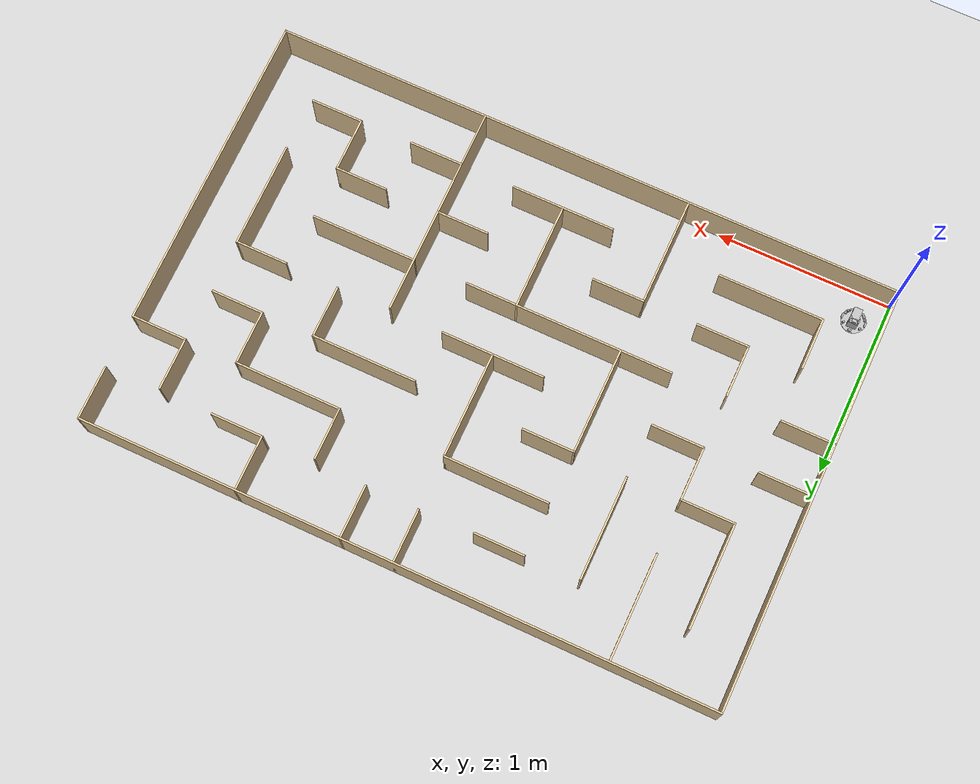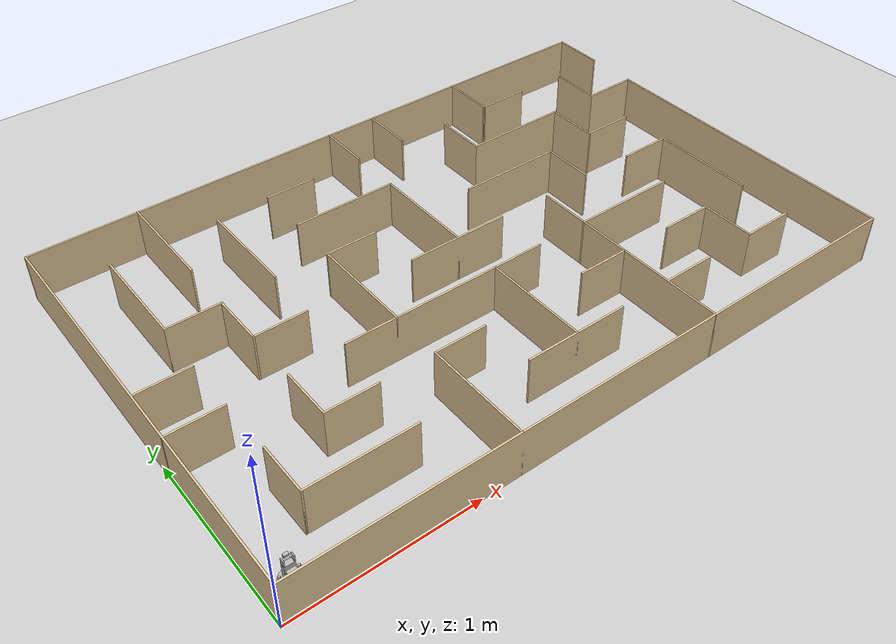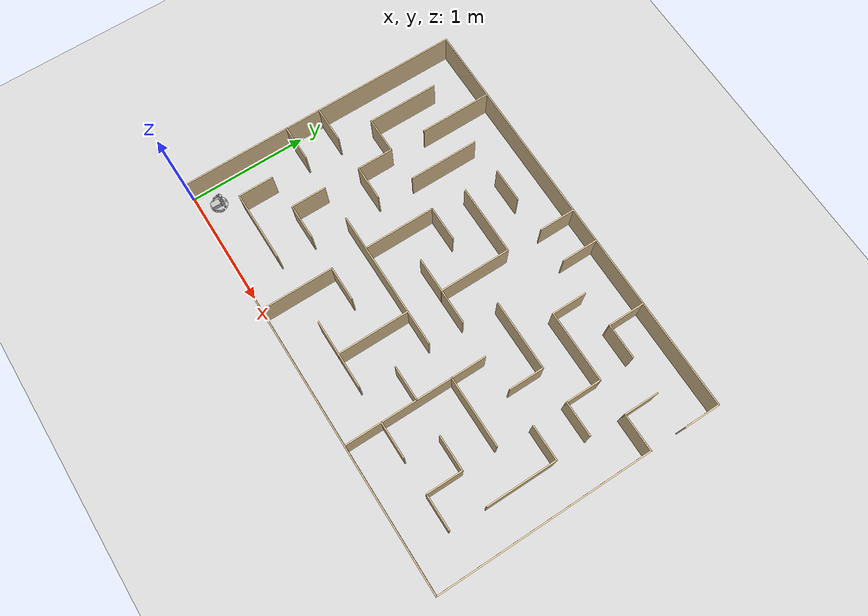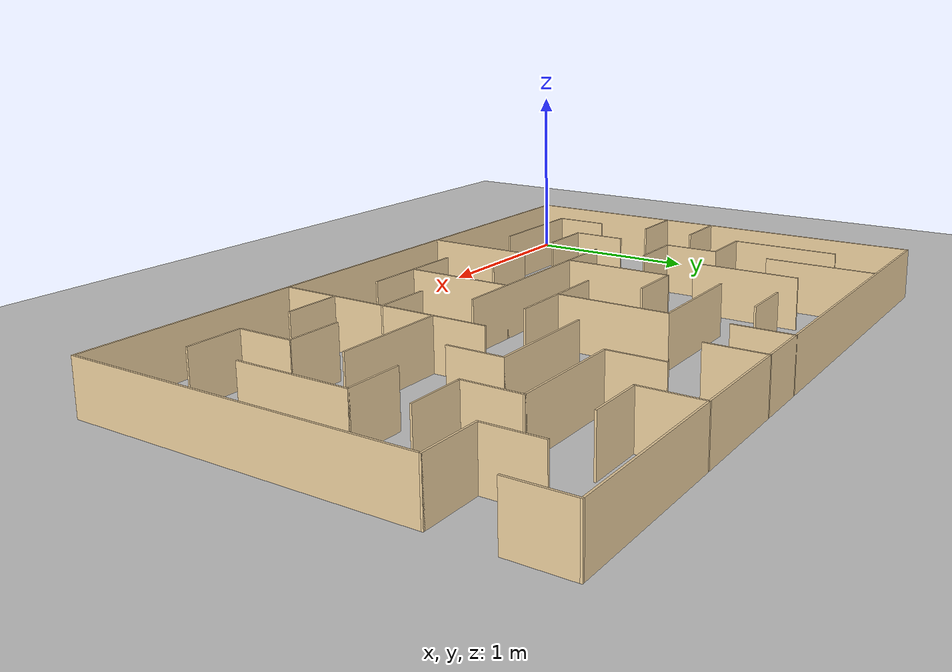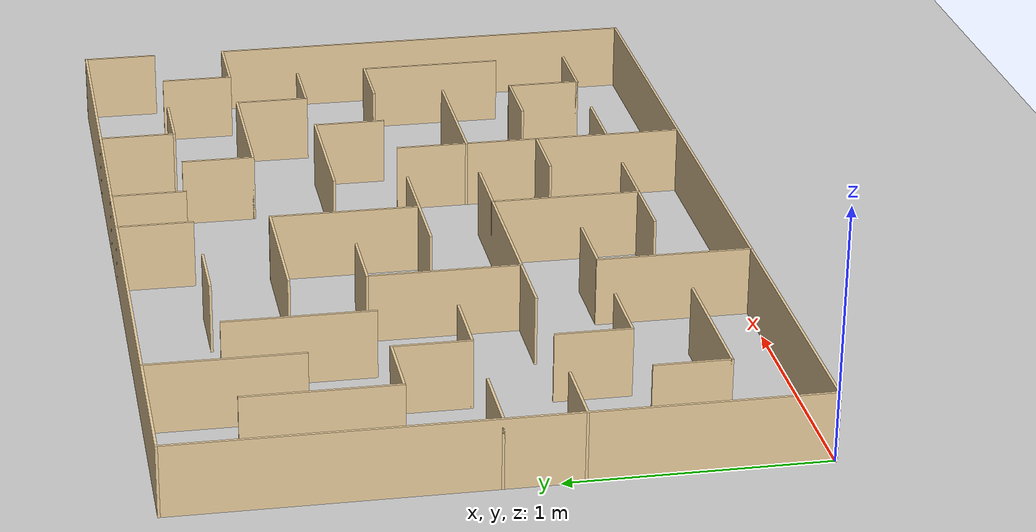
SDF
<?xml version="1.0" ?>
<sdf version="1.4">
  <world name="default">
    <scene>
      <ambient>0.5 0.5 0.5 1.0</ambient>
      <shadows>0</shadows>
    </scene>
    <include>
      <uri>model://ground_plane</uri>
    </include>
    <include>
      <uri>model://sun</uri>
    </include>
    <include>
      <uri>model://iti0201_robot</uri>
      <name>iti0201_robot</name>
      <pose>0.15 0.15 0 0 0 -4.712</pose> <!-- this is the robot's starting position, if you know where it should be, you can change this -->
    </include>

    <model name='mazeeeeee_tight'>
    <pose frame=''>1.80996 1.21 0 0 -0 0</pose>
    <link name='Wall_0'>
      <collision name='Wall_0_Collision'>
        <geometry>
          <box>
            <size>0.6 0.01 0.28</size>
          </box>
        </geometry>
        <pose frame=''>0 0 0.14 0 -0 0</pose>
      </collision>
      <visual name='Wall_0_Visual'>
        <pose frame=''>0 0 0.14 0 -0 0</pose>
        <geometry>
          <box>
            <size>0.6 0.01 0.28</size>
          </box>
        </geometry>
        <material>
          <script>
            <uri>file://media/materials/scripts/gazebo.material</uri>
            <name>Gazebo/Grey</name>
          </script>
          <ambient>0.921569 0.807843 0.615686 1</ambient>
        </material>
        <meta>
          <layer>0</layer>
        </meta>
      </visual>
      <pose frame=''>1.50004 -0.295 0 0 0 -1.5708</pose>
    </link>
    <link name='Wall_100'>
      <collision name='Wall_100_Collision'>
        <geometry>
          <box>
            <size>0.3 0.01 0.28</size>
          </box>
        </geometry>
        <pose frame=''>0 0 0.14 0 -0 0</pose>
      </collision>
      <visual name='Wall_100_Visual'>
        <pose frame=''>0 0 0.14 0 -0 0</pose>
        <geometry>
          <box>
            <size>0.3 0.01 0.28</size>
          </box>
        </geometry>
        <material>
          <script>
            <uri>file://media/materials/scripts/gazebo.material</uri>
            <name>Gazebo/Grey</name>
          </script>
          <ambient>0.921569 0.807843 0.615686 1</ambient>
        </material>
        <meta>
          <layer>0</layer>
        </meta>
      </visual>
      <pose frame=''>1.34504 -0.9 0 0 -0 0</pose>
    </link>
    <link name='Wall_11'>
      <collision name='Wall_11_Collision'>
        <geometry>
          <box>
            <size>0.32 0.01 0.28</size>
          </box>
        </geometry>
        <pose frame=''>0 0 0.14 0 -0 0</pose>
      </collision>
      <visual name='Wall_11_Visual'>
        <pose frame=''>0 0 0.14 0 -0 0</pose>
        <geometry>
          <box>
            <size>0.32 0.01 0.28</size>
          </box>
        </geometry>
        <material>
          <script>
            <uri>file://media/materials/scripts/gazebo.material</uri>
            <name>Gazebo/Grey</name>
          </script>
          <ambient>0.921569 0.807843 0.615686 1</ambient>
        </material>
        <meta>
          <layer>0</layer>
        </meta>
      </visual>
      <pose frame=''>0.900042 1.055 0 0 0 -1.5708</pose>
    </link>
    <link name='Wall_13'>
      <collision name='Wall_13_Collision'>
        <geometry>
          <box>
            <size>0.3 0.01 0.28</size>
          </box>
        </geometry>
        <pose frame=''>0 0 0.14 0 -0 0</pose>
      </collision>
      <visual name='Wall_13_Visual'>
        <pose frame=''>0 0 0.14 0 -0 0</pose>
        <geometry>
          <box>
            <size>0.3 0.01 0.28</size>
          </box>
        </geometry>
        <material>
          <script>
            <uri>file://media/materials/scripts/gazebo.material</uri>
            <name>Gazebo/Grey</name>
          </script>
          <ambient>0.921569 0.807843 0.615686 1</ambient>
        </material>
        <meta>
          <layer>0</layer>
        </meta>
      </visual>
      <pose frame=''>0.900042 0.155 0 0 0 -1.5708</pose>
    </link>
    <link name='Wall_15'>
      <collision name='Wall_15_Collision'>
        <geometry>
          <box>
            <size>0.6 0.01 0.28</size>
          </box>
        </geometry>
        <pose frame=''>0 0 0.14 0 -0 0</pose>
      </collision>
      <visual name='Wall_15_Visual'>
        <pose frame=''>0 0 0.14 0 -0 0</pose>
        <geometry>
          <box>
            <size>0.6 0.01 0.28</size>
          </box>
        </geometry>
        <material>
          <script>
            <uri>file://media/materials/scripts/gazebo.material</uri>
            <name>Gazebo/Grey</name>
          </script>
          <ambient>0.921569 0.807843 0.615686 1</ambient>
        </material>
        <meta>
          <layer>0</layer>
        </meta>
      </visual>
      <pose frame=''>0.605042 0.3 0 0 -0 0</pose>
    </link>
    <link name='Wall_18'>
      <collision name='Wall_18_Collision'>
        <geometry>
          <box>
            <size>0.3 0.01 0.28</size>
          </box>
        </geometry>
        <pose frame=''>0 0 0.14 0 -0 0</pose>
      </collision>
      <visual name='Wall_18_Visual'>
        <pose frame=''>0 0 0.14 0 -0 0</pose>
        <geometry>
          <box>
            <size>0.3 0.01 0.28</size>
          </box>
        </geometry>
        <material>
          <script>
            <uri>file://media/materials/scripts/gazebo.material</uri>
            <name>Gazebo/Grey</name>
          </script>
          <ambient>0.921569 0.807843 0.615686 1</ambient>
        </material>
        <meta>
          <layer>0</layer>
        </meta>
      </visual>
      <pose frame=''>-0.454958 -0.6 0 0 -0 0</pose>
    </link>
    <link name='Wall_2'>
      <collision name='Wall_2_Collision'>
        <geometry>
          <box>
            <size>0.3 0.01 0.28</size>
          </box>
        </geometry>
        <pose frame=''>0 0 0.14 0 -0 0</pose>
      </collision>
      <visual name='Wall_2_Visual'>
        <pose frame=''>0 0 0.14 0 -0 0</pose>
        <geometry>
          <box>
            <size>0.3 0.01 0.28</size>
          </box>
        </geometry>
        <material>
          <script>
            <uri>file://media/materials/scripts/gazebo.material</uri>
            <name>Gazebo/Grey</name>
          </script>
          <ambient>0.921569 0.807843 0.615686 1</ambient>
        </material>
        <meta>
          <layer>0</layer>
        </meta>
      </visual>
      <pose frame=''>1.35504 0 0 0 -0 0</pose>
    </link>
    <link name='Wall_20'>
      <collision name='Wall_20_Collision'>
        <geometry>
          <box>
            <size>0.62 0.01 0.28</size>
          </box>
        </geometry>
        <pose frame=''>0 0 0.14 0 -0 0</pose>
      </collision>
      <visual name='Wall_20_Visual'>
        <pose frame=''>0 0 0.14 0 -0 0</pose>
        <geometry>
          <box>
            <size>0.62 0.01 0.28</size>
          </box>
        </geometry>
        <material>
          <script>
            <uri>file://media/materials/scripts/gazebo.material</uri>
            <name>Gazebo/Grey</name>
          </script>
          <ambient>0.921569 0.807843 0.615686 1</ambient>
        </material>
        <meta>
          <layer>0</layer>
        </meta>
      </visual>
      <pose frame=''>-0.599958 -0.905 0 0 -0 1.5708</pose>
    </link>
    <link name='Wall_22'>
      <collision name='Wall_22_Collision'>
        <geometry>
          <box>
            <size>0.29 0.01 0.28</size>
          </box>
        </geometry>
        <pose frame=''>0 0 0.14 0 -0 0</pose>
      </collision>
      <visual name='Wall_22_Visual'>
        <pose frame=''>0 0 0.14 0 -0 0</pose>
        <geometry>
          <box>
            <size>0.29 0.01 0.28</size>
          </box>
        </geometry>
        <material>
          <script>
            <uri>file://media/materials/scripts/gazebo.material</uri>
            <name>Gazebo/Grey</name>
          </script>
          <ambient>0.921569 0.807843 0.615686 1</ambient>
        </material>
        <meta>
          <layer>0</layer>
        </meta>
      </visual>
      <pose frame=''>-0.449958 0.9 0 0 -0 0</pose>
    </link>
    <link name='Wall_24'>
      <collision name='Wall_24_Collision'>
        <geometry>
          <box>
            <size>0.59 0.01 0.28</size>
          </box>
        </geometry>
        <pose frame=''>0 0 0.14 0 -0 0</pose>
      </collision>
      <visual name='Wall_24_Visual'>
        <pose frame=''>0 0 0.14 0 -0 0</pose>
        <geometry>
          <box>
            <size>0.59 0.01 0.28</size>
          </box>
        </geometry>
        <material>
          <script>
            <uri>file://media/materials/scripts/gazebo.material</uri>
            <name>Gazebo/Grey</name>
          </script>
          <ambient>0.921569 0.807843 0.615686 1</ambient>
        </material>
        <meta>
          <layer>0</layer>
        </meta>
      </visual>
      <pose frame=''>-0.899958 0.6 0 0 0 -1.5708</pose>
    </link>
    <link name='Wall_26'>
      <collision name='Wall_26_Collision'>
        <geometry>
          <box>
            <size>0.3 0.01 0.28</size>
          </box>
        </geometry>
        <pose frame=''>0 0 0.14 0 -0 0</pose>
      </collision>
      <visual name='Wall_26_Visual'>
        <pose frame=''>0 0 0.14 0 -0 0</pose>
        <geometry>
          <box>
            <size>0.3 0.01 0.28</size>
          </box>
        </geometry>
        <material>
          <script>
            <uri>file://media/materials/scripts/gazebo.material</uri>
            <name>Gazebo/Grey</name>
          </script>
          <ambient>0.921569 0.807843 0.615686 1</ambient>
        </material>
        <meta>
          <layer>0</layer>
        </meta>
      </visual>
      <pose frame=''>-1.05496 0 0 0 -0 0</pose>
    </link>
    <link name='Wall_28'>
      <collision name='Wall_28_Collision'>
        <geometry>
          <box>
            <size>0.31 0.01 0.28</size>
          </box>
        </geometry>
        <pose frame=''>0 0 0.14 0 -0 0</pose>
      </collision>
      <visual name='Wall_28_Visual'>
        <pose frame=''>0 0 0.14 0 -0 0</pose>
        <geometry>
          <box>
            <size>0.31 0.01 0.28</size>
          </box>
        </geometry>
        <material>
          <script>
            <uri>file://media/materials/scripts/gazebo.material</uri>
            <name>Gazebo/Grey</name>
          </script>
          <ambient>0.921569 0.807843 0.615686 1</ambient>
        </material>
        <meta>
          <layer>0</layer>
        </meta>
      </visual>
      <pose frame=''>-1.19996 0.15 0 0 0 -1.5708</pose>
    </link>
    <link name='Wall_30'>
      <collision name='Wall_30_Collision'>
        <geometry>
          <box>
            <size>0.31 0.01 0.28</size>
          </box>
        </geometry>
        <pose frame=''>0 0 0.14 0 -0 0</pose>
      </collision>
      <visual name='Wall_30_Visual'>
        <pose frame=''>0 0 0.14 0 -0 0</pose>
        <geometry>
          <box>
            <size>0.31 0.01 0.28</size>
          </box>
        </geometry>
        <material>
          <script>
            <uri>file://media/materials/scripts/gazebo.material</uri>
            <name>Gazebo/Grey</name>
          </script>
          <ambient>0.921569 0.807843 0.615686 1</ambient>
        </material>
        <meta>
          <layer>0</layer>
        </meta>
      </visual>
      <pose frame=''>-1.34996 0.3 0 0 -0 0</pose>
    </link>
    <link name='Wall_32'>
      <collision name='Wall_32_Collision'>
        <geometry>
          <box>
            <size>0.6 0.01 0.28</size>
          </box>
        </geometry>
        <pose frame=''>0 0 0.14 0 -0 0</pose>
      </collision>
      <visual name='Wall_32_Visual'>
        <pose frame=''>0 0 0.14 0 -0 0</pose>
        <geometry>
          <box>
            <size>0.6 0.01 0.28</size>
          </box>
        </geometry>
        <material>
          <script>
            <uri>file://media/materials/scripts/gazebo.material</uri>
            <name>Gazebo/Grey</name>
          </script>
          <ambient>0.921569 0.807843 0.615686 1</ambient>
        </material>
        <meta>
          <layer>0</layer>
        </meta>
      </visual>
      <pose frame=''>-1.49996 0.595 0 0 0 -1.5708</pose>
    </link>
    <link name='Wall_34'>
      <collision name='Wall_34_Collision'>
        <geometry>
          <box>
            <size>0.3 0.01 0.28</size>
          </box>
        </geometry>
        <pose frame=''>0 0 0.14 0 -0 0</pose>
      </collision>
      <visual name='Wall_34_Visual'>
        <pose frame=''>0 0 0.14 0 -0 0</pose>
        <geometry>
          <box>
            <size>0.3 0.01 0.28</size>
          </box>
        </geometry>
        <material>
          <script>
            <uri>file://media/materials/scripts/gazebo.material</uri>
            <name>Gazebo/Grey</name>
          </script>
          <ambient>0.921569 0.807843 0.615686 1</ambient>
        </material>
        <meta>
          <layer>0</layer>
        </meta>
      </visual>
      <pose frame=''>-1.05496 -0.6 0 0 -0 0</pose>
    </link>
    <link name='Wall_36'>
      <collision name='Wall_36_Collision'>
        <geometry>
          <box>
            <size>0.3 0.01 0.28</size>
          </box>
        </geometry>
        <pose frame=''>0 0 0.14 0 -0 0</pose>
      </collision>
      <visual name='Wall_36_Visual'>
        <pose frame=''>0 0 0.14 0 -0 0</pose>
        <geometry>
          <box>
            <size>0.3 0.01 0.28</size>
          </box>
        </geometry>
        <material>
          <script>
            <uri>file://media/materials/scripts/gazebo.material</uri>
            <name>Gazebo/Grey</name>
          </script>
          <ambient>0.921569 0.807843 0.615686 1</ambient>
        </material>
        <meta>
          <layer>0</layer>
        </meta>
      </visual>
      <pose frame=''>-1.19996 -0.455 0 0 0 -1.5708</pose>
    </link>
    <link name='Wall_38'>
      <collision name='Wall_38_Collision'>
        <geometry>
          <box>
            <size>0.6 0.01 0.28</size>
          </box>
        </geometry>
        <pose frame=''>0 0 0.14 0 -0 0</pose>
      </collision>
      <visual name='Wall_38_Visual'>
        <pose frame=''>0 0 0.14 0 -0 0</pose>
        <geometry>
          <box>
            <size>0.6 0.01 0.28</size>
          </box>
        </geometry>
        <material>
          <script>
            <uri>file://media/materials/scripts/gazebo.material</uri>
            <name>Gazebo/Grey</name>
          </script>
          <ambient>0.921569 0.807843 0.615686 1</ambient>
        </material>
        <meta>
          <layer>0</layer>
        </meta>
      </visual>
      <pose frame=''>-1.20496 -0.9 0 0 -0 0</pose>
    </link>
    <link name='Wall_40'>
      <collision name='Wall_40_Collision'>
        <geometry>
          <box>
            <size>0.3 0.01 0.28</size>
          </box>
        </geometry>
        <pose frame=''>0 0 0.14 0 -0 0</pose>
      </collision>
      <visual name='Wall_40_Visual'>
        <pose frame=''>0 0 0.14 0 -0 0</pose>
        <geometry>
          <box>
            <size>0.3 0.01 0.28</size>
          </box>
        </geometry>
        <material>
          <script>
            <uri>file://media/materials/scripts/gazebo.material</uri>
            <name>Gazebo/Grey</name>
          </script>
          <ambient>0.921569 0.807843 0.615686 1</ambient>
        </material>
        <meta>
          <layer>0</layer>
        </meta>
      </visual>
      <pose frame=''>-1.49996 -0.755 0 0 0 -1.5708</pose>
    </link>
    <link name='Wall_42'>
      <collision name='Wall_42_Collision'>
        <geometry>
          <box>
            <size>0.31 0.01 0.28</size>
          </box>
        </geometry>
        <pose frame=''>0 0 0.14 0 -0 0</pose>
      </collision>
      <visual name='Wall_42_Visual'>
        <pose frame=''>0 0 0.14 0 -0 0</pose>
        <geometry>
          <box>
            <size>0.31 0.01 0.28</size>
          </box>
        </geometry>
        <material>
          <script>
            <uri>file://media/materials/scripts/gazebo.material</uri>
            <name>Gazebo/Grey</name>
          </script>
          <ambient>0.921569 0.807843 0.615686 1</ambient>
        </material>
        <meta>
          <layer>0</layer>
        </meta>
      </visual>
      <pose frame=''>0.300042 1.06 0 0 0 -1.5708</pose>
    </link>
    <link name='Wall_44'>
      <collision name='Wall_44_Collision'>
        <geometry>
          <box>
            <size>0.31 0.01 0.28</size>
          </box>
        </geometry>
        <pose frame=''>0 0 0.14 0 -0 0</pose>
      </collision>
      <visual name='Wall_44_Visual'>
        <pose frame=''>0 0 0.14 0 -0 0</pose>
        <geometry>
          <box>
            <size>0.31 0.01 0.28</size>
          </box>
        </geometry>
        <material>
          <script>
            <uri>file://media/materials/scripts/gazebo.material</uri>
            <name>Gazebo/Grey</name>
          </script>
          <ambient>0.921569 0.807843 0.615686 1</ambient>
        </material>
        <meta>
          <layer>0</layer>
        </meta>
      </visual>
      <pose frame=''>4.2e-05 1.06 0 0 0 -1.5708</pose>
    </link>
    <link name='Wall_46'>
      <collision name='Wall_46_Collision'>
        <geometry>
          <box>
            <size>0.61 0.01 0.28</size>
          </box>
        </geometry>
        <pose frame=''>0 0 0.14 0 -0 0</pose>
      </collision>
      <visual name='Wall_46_Visual'>
        <pose frame=''>0 0 0.14 0 -0 0</pose>
        <geometry>
          <box>
            <size>0.61 0.01 0.28</size>
          </box>
        </geometry>
        <material>
          <script>
            <uri>file://media/materials/scripts/gazebo.material</uri>
            <name>Gazebo/Grey</name>
          </script>
          <ambient>0.921569 0.807843 0.615686 1</ambient>
        </material>
        <meta>
          <layer>0</layer>
        </meta>
      </visual>
      <pose frame=''>-1.19996 0.91 0 0 0 -1.5708</pose>
    </link>
    <link name='Wall_48'>
      <collision name='Wall_48_Collision'>
        <geometry>
          <box>
            <size>0.310167 0.01 0.28</size>
          </box>
        </geometry>
        <pose frame=''>0 0 0.14 0 -0 0</pose>
      </collision>
      <visual name='Wall_48_Visual'>
        <pose frame=''>0 0 0.14 0 -0 0</pose>
        <geometry>
          <box>
            <size>0.310167 0.01 0.28</size>
          </box>
        </geometry>
        <material>
          <script>
            <uri>file://media/materials/scripts/gazebo.material</uri>
            <name>Gazebo/Grey</name>
          </script>
          <ambient>0.921569 0.807843 0.615686 1</ambient>
        </material>
        <meta>
          <layer>0</layer>
        </meta>
      </visual>
      <pose frame=''>-1.65996 -0.3 0 0 -0 0</pose>
    </link>
    <link name='Wall_5'>
      <collision name='Wall_5_Collision'>
        <geometry>
          <box>
            <size>0.32 0.01 0.28</size>
          </box>
        </geometry>
        <pose frame=''>0 0 0.14 0 -0 0</pose>
      </collision>
      <visual name='Wall_5_Visual'>
        <pose frame=''>0 0 0.14 0 -0 0</pose>
        <geometry>
          <box>
            <size>0.32 0.01 0.28</size>
          </box>
        </geometry>
        <material>
          <script>
            <uri>file://media/materials/scripts/gazebo.material</uri>
            <name>Gazebo/Grey</name>
          </script>
          <ambient>0.921569 0.807843 0.615686 1</ambient>
        </material>
        <meta>
          <layer>0</layer>
        </meta>
      </visual>
      <pose frame=''>1.65504 0.6 0 0 -0 0</pose>
    </link>
    <link name='Wall_50'>
      <collision name='Wall_50_Collision'>
        <geometry>
          <box>
            <size>1.82 0.01 0.28</size>
          </box>
        </geometry>
        <pose frame=''>0 0 0.14 0 -0 0</pose>
      </collision>
      <visual name='Wall_50_Visual'>
        <pose frame=''>0 0 0.14 0 -0 0</pose>
        <geometry>
          <box>
            <size>1.82 0.01 0.28</size>
          </box>
        </geometry>
        <material>
          <script>
            <uri>file://media/materials/scripts/gazebo.material</uri>
            <name>Gazebo/Grey</name>
          </script>
          <ambient>0.921569 0.807843 0.615686 1</ambient>
        </material>
        <meta>
          <layer>0</layer>
        </meta>
      </visual>
      <pose frame=''>1.81004 -0.305 0 0 -0 1.5708</pose>
    </link>
    <link name='Wall_52'>
      <collision name='Wall_52_Collision'>
        <geometry>
          <box>
            <size>0.31 0.01 0.28</size>
          </box>
        </geometry>
        <pose frame=''>0 0 0.14 0 -0 0</pose>
      </collision>
      <visual name='Wall_52_Visual'>
        <pose frame=''>0 0 0.14 0 -0 0</pose>
        <geometry>
          <box>
            <size>0.31 0.01 0.28</size>
          </box>
        </geometry>
        <material>
          <script>
            <uri>file://media/materials/scripts/gazebo.material</uri>
            <name>Gazebo/Grey</name>
          </script>
          <ambient>0.921569 0.807843 0.615686 1</ambient>
        </material>
        <meta>
          <layer>0</layer>
        </meta>
      </visual>
      <pose frame=''>-1.65996 0 0 0 -0 0</pose>
    </link>
    <link name='Wall_54'>
      <collision name='Wall_54_Collision'>
        <geometry>
          <box>
            <size>2.43 0.01 0.28</size>
          </box>
        </geometry>
        <pose frame=''>0 0 0.14 0 -0 0</pose>
      </collision>
      <visual name='Wall_54_Visual'>
        <pose frame=''>0 0 0.14 0 -0 0</pose>
        <geometry>
          <box>
            <size>2.43 0.01 0.28</size>
          </box>
        </geometry>
        <material>
          <script>
            <uri>file://media/materials/scripts/gazebo.material</uri>
            <name>Gazebo/Grey</name>
          </script>
          <ambient>0.921569 0.807843 0.615686 1</ambient>
        </material>
        <meta>
          <layer>0</layer>
        </meta>
      </visual>
      <pose frame=''>-1.80996 0 0 0 0 -1.5708</pose>
    </link>
    <link name='Wall_56'>
      <collision name='Wall_56_Collision'>
        <geometry>
          <box>
            <size>3.63 0.01 0.28</size>
          </box>
        </geometry>
        <pose frame=''>0 0 0.14 0 -0 0</pose>
      </collision>
      <visual name='Wall_56_Visual'>
        <pose frame=''>0 0 0.14 0 -0 0</pose>
        <geometry>
          <box>
            <size>3.63 0.01 0.28</size>
          </box>
        </geometry>
        <material>
          <script>
            <uri>file://media/materials/scripts/gazebo.material</uri>
            <name>Gazebo/Grey</name>
          </script>
          <ambient>0.921569 0.807843 0.615686 1</ambient>
        </material>
        <meta>
          <layer>0</layer>
        </meta>
      </visual>
      <pose frame=''>4.2e-05 1.21 0 0 -0 3.14159</pose>
    </link>
    <link name='Wall_58'>
      <collision name='Wall_58_Collision'>
        <geometry>
          <box>
            <size>0.31 0.01 0.28</size>
          </box>
        </geometry>
        <pose frame=''>0 0 0.14 0 -0 0</pose>
      </collision>
      <visual name='Wall_58_Visual'>
        <pose frame=''>0 0 0.14 0 -0 0</pose>
        <geometry>
          <box>
            <size>0.31 0.01 0.28</size>
          </box>
        </geometry>
        <material>
          <script>
            <uri>file://media/materials/scripts/gazebo.material</uri>
            <name>Gazebo/Grey</name>
          </script>
          <ambient>0.921569 0.807843 0.615686 1</ambient>
        </material>
        <meta>
          <layer>0</layer>
        </meta>
      </visual>
      <pose frame=''>1.81004 1.06 0 0 -0 1.5708</pose>
    </link>
    <link name='Wall_60'>
      <collision name='Wall_60_Collision'>
        <geometry>
          <box>
            <size>3.63 0.01 0.28</size>
          </box>
        </geometry>
        <pose frame=''>0 0 0.14 0 -0 0</pose>
      </collision>
      <visual name='Wall_60_Visual'>
        <pose frame=''>0 0 0.14 0 -0 0</pose>
        <geometry>
          <box>
            <size>3.63 0.01 0.28</size>
          </box>
        </geometry>
        <material>
          <script>
            <uri>file://media/materials/scripts/gazebo.material</uri>
            <name>Gazebo/Grey</name>
          </script>
          <ambient>0.921569 0.807843 0.615686 1</ambient>
        </material>
        <meta>
          <layer>0</layer>
        </meta>
      </visual>
      <pose frame=''>4.2e-05 -1.21 0 0 -0 0</pose>
    </link>
    <link name='Wall_63'>
      <collision name='Wall_63_Collision'>
        <geometry>
          <box>
            <size>0.3 0.01 0.28</size>
          </box>
        </geometry>
        <pose frame=''>0 0 0.14 0 -0 0</pose>
      </collision>
      <visual name='Wall_63_Visual'>
        <pose frame=''>0 0 0.14 0 -0 0</pose>
        <geometry>
          <box>
            <size>0.3 0.01 0.28</size>
          </box>
        </geometry>
        <material>
          <script>
            <uri>file://media/materials/scripts/gazebo.material</uri>
            <name>Gazebo/Grey</name>
          </script>
          <ambient>0.921569 0.807843 0.615686 1</ambient>
        </material>
        <meta>
          <layer>0</layer>
        </meta>
      </visual>
      <pose frame=''>0.600042 0.745 0 0 0 -1.5708</pose>
    </link>
    <link name='Wall_65'>
      <collision name='Wall_65_Collision'>
        <geometry>
          <box>
            <size>0.61 0.01 0.28</size>
          </box>
        </geometry>
        <pose frame=''>0 0 0.14 0 -0 0</pose>
      </collision>
      <visual name='Wall_65_Visual'>
        <pose frame=''>0 0 0.14 0 -0 0</pose>
        <geometry>
          <box>
            <size>0.61 0.01 0.28</size>
          </box>
        </geometry>
        <material>
          <script>
            <uri>file://media/materials/scripts/gazebo.material</uri>
            <name>Gazebo/Grey</name>
          </script>
          <ambient>0.921569 0.807843 0.615686 1</ambient>
        </material>
        <meta>
          <layer>0</layer>
        </meta>
      </visual>
      <pose frame=''>0.900042 0.6 0 0 -0 0</pose>
    </link>
    <link name='Wall_68'>
      <collision name='Wall_68_Collision'>
        <geometry>
          <box>
            <size>0.31 0.01 0.28</size>
          </box>
        </geometry>
        <pose frame=''>0 0 0.14 0 -0 0</pose>
      </collision>
      <visual name='Wall_68_Visual'>
        <pose frame=''>0 0 0.14 0 -0 0</pose>
        <geometry>
          <box>
            <size>0.31 0.01 0.28</size>
          </box>
        </geometry>
        <material>
          <script>
            <uri>file://media/materials/scripts/gazebo.material</uri>
            <name>Gazebo/Grey</name>
          </script>
          <ambient>0.921569 0.807843 0.615686 1</ambient>
        </material>
        <meta>
          <layer>0</layer>
        </meta>
      </visual>
      <pose frame=''>1.20004 0.45 0 0 0 -1.5708</pose>
    </link>
    <link name='Wall_7'>
      <collision name='Wall_7_Collision'>
        <geometry>
          <box>
            <size>0.3 0.01 0.28</size>
          </box>
        </geometry>
        <pose frame=''>0 0 0.14 0 -0 0</pose>
      </collision>
      <visual name='Wall_7_Visual'>
        <pose frame=''>0 0 0.14 0 -0 0</pose>
        <geometry>
          <box>
            <size>0.3 0.01 0.28</size>
          </box>
        </geometry>
        <material>
          <script>
            <uri>file://media/materials/scripts/gazebo.material</uri>
            <name>Gazebo/Grey</name>
          </script>
          <ambient>0.921569 0.807843 0.615686 1</ambient>
        </material>
        <meta>
          <layer>0</layer>
        </meta>
      </visual>
      <pose frame=''>1.50004 0.745 0 0 0 -1.5708</pose>
    </link>
    <link name='Wall_70'>
      <collision name='Wall_70_Collision'>
        <geometry>
          <box>
            <size>0.3 0.01 0.28</size>
          </box>
        </geometry>
        <pose frame=''>0 0 0.14 0 -0 0</pose>
      </collision>
      <visual name='Wall_70_Visual'>
        <pose frame=''>0 0 0.14 0 -0 0</pose>
        <geometry>
          <box>
            <size>0.3 0.01 0.28</size>
          </box>
        </geometry>
        <material>
          <script>
            <uri>file://media/materials/scripts/gazebo.material</uri>
            <name>Gazebo/Grey</name>
          </script>
          <ambient>0.921569 0.807843 0.615686 1</ambient>
        </material>
        <meta>
          <layer>0</layer>
        </meta>
      </visual>
      <pose frame=''>1.34504 0.3 0 0 -0 0</pose>
    </link>
    <link name='Wall_72'>
      <collision name='Wall_72_Collision'>
        <geometry>
          <box>
            <size>0.3 0.01 0.28</size>
          </box>
        </geometry>
        <pose frame=''>0 0 0.14 0 -0 0</pose>
      </collision>
      <visual name='Wall_72_Visual'>
        <pose frame=''>0 0 0.14 0 -0 0</pose>
        <geometry>
          <box>
            <size>0.3 0.01 0.28</size>
          </box>
        </geometry>
        <material>
          <script>
            <uri>file://media/materials/scripts/gazebo.material</uri>
            <name>Gazebo/Grey</name>
          </script>
          <ambient>0.921569 0.807843 0.615686 1</ambient>
        </material>
        <meta>
          <layer>0</layer>
        </meta>
      </visual>
      <pose frame=''>0.455042 -0.6 0 0 -0 0</pose>
    </link>
    <link name='Wall_74'>
      <collision name='Wall_74_Collision'>
        <geometry>
          <box>
            <size>0.6 0.01 0.28</size>
          </box>
        </geometry>
        <pose frame=''>0 0 0.14 0 -0 0</pose>
      </collision>
      <visual name='Wall_74_Visual'>
        <pose frame=''>0 0 0.14 0 -0 0</pose>
        <geometry>
          <box>
            <size>0.6 0.01 0.28</size>
          </box>
        </geometry>
        <material>
          <script>
            <uri>file://media/materials/scripts/gazebo.material</uri>
            <name>Gazebo/Grey</name>
          </script>
          <ambient>0.921569 0.807843 0.615686 1</ambient>
        </material>
        <meta>
          <layer>0</layer>
        </meta>
      </visual>
      <pose frame=''>0.895042 -0.3 0 0 -0 0</pose>
    </link>
    <link name='Wall_76'>
      <collision name='Wall_76_Collision'>
        <geometry>
          <box>
            <size>0.31 0.01 0.28</size>
          </box>
        </geometry>
        <pose frame=''>0 0 0.14 0 -0 0</pose>
      </collision>
      <visual name='Wall_76_Visual'>
        <pose frame=''>0 0 0.14 0 -0 0</pose>
        <geometry>
          <box>
            <size>0.31 0.01 0.28</size>
          </box>
        </geometry>
        <material>
          <script>
            <uri>file://media/materials/scripts/gazebo.material</uri>
            <name>Gazebo/Grey</name>
          </script>
          <ambient>0.921569 0.807843 0.615686 1</ambient>
        </material>
        <meta>
          <layer>0</layer>
        </meta>
      </visual>
      <pose frame=''>0.750042 -0.9 0 0 -0 0</pose>
    </link>
    <link name='Wall_78'>
      <collision name='Wall_78_Collision'>
        <geometry>
          <box>
            <size>1.21 0.01 0.28</size>
          </box>
        </geometry>
        <pose frame=''>0 0 0.14 0 -0 0</pose>
      </collision>
      <visual name='Wall_78_Visual'>
        <pose frame=''>0 0 0.14 0 -0 0</pose>
        <geometry>
          <box>
            <size>1.21 0.01 0.28</size>
          </box>
        </geometry>
        <material>
          <script>
            <uri>file://media/materials/scripts/gazebo.material</uri>
            <name>Gazebo/Grey</name>
          </script>
          <ambient>0.921569 0.807843 0.615686 1</ambient>
        </material>
        <meta>
          <layer>0</layer>
        </meta>
      </visual>
      <pose frame=''>0.600042 -0.61 0 0 0 -1.5708</pose>
    </link>
    <link name='Wall_80'>
      <collision name='Wall_80_Collision'>
        <geometry>
          <box>
            <size>0.3 0.01 0.28</size>
          </box>
        </geometry>
        <pose frame=''>0 0 0.14 0 -0 0</pose>
      </collision>
      <visual name='Wall_80_Visual'>
        <pose frame=''>0 0 0.14 0 -0 0</pose>
        <geometry>
          <box>
            <size>0.3 0.01 0.28</size>
          </box>
        </geometry>
        <material>
          <script>
            <uri>file://media/materials/scripts/gazebo.material</uri>
            <name>Gazebo/Grey</name>
          </script>
          <ambient>0.921569 0.807843 0.615686 1</ambient>
        </material>
        <meta>
          <layer>0</layer>
        </meta>
      </visual>
      <pose frame=''>-0.454958 0.3 0 0 -0 0</pose>
    </link>
    <link name='Wall_82'>
      <collision name='Wall_82_Collision'>
        <geometry>
          <box>
            <size>0.59 0.01 0.28</size>
          </box>
        </geometry>
        <pose frame=''>0 0 0.14 0 -0 0</pose>
      </collision>
      <visual name='Wall_82_Visual'>
        <pose frame=''>0 0 0.14 0 -0 0</pose>
        <geometry>
          <box>
            <size>0.59 0.01 0.28</size>
          </box>
        </geometry>
        <material>
          <script>
            <uri>file://media/materials/scripts/gazebo.material</uri>
            <name>Gazebo/Grey</name>
          </script>
          <ambient>0.921569 0.807843 0.615686 1</ambient>
        </material>
        <meta>
          <layer>0</layer>
        </meta>
      </visual>
      <pose frame=''>4.2e-05 0 0 0 -0 0</pose>
    </link>
    <link name='Wall_84'>
      <collision name='Wall_84_Collision'>
        <geometry>
          <box>
            <size>0.61 0.01 0.28</size>
          </box>
        </geometry>
        <pose frame=''>0 0 0.14 0 -0 0</pose>
      </collision>
      <visual name='Wall_84_Visual'>
        <pose frame=''>0 0 0.14 0 -0 0</pose>
        <geometry>
          <box>
            <size>0.61 0.01 0.28</size>
          </box>
        </geometry>
        <material>
          <script>
            <uri>file://media/materials/scripts/gazebo.material</uri>
            <name>Gazebo/Grey</name>
          </script>
          <ambient>0.921569 0.807843 0.615686 1</ambient>
        </material>
        <meta>
          <layer>0</layer>
        </meta>
      </visual>
      <pose frame=''>4.2e-05 0.3 0 0 0 -1.5708</pose>
    </link>
    <link name='Wall_86'>
      <collision name='Wall_86_Collision'>
        <geometry>
          <box>
            <size>0.6 0.01 0.28</size>
          </box>
        </geometry>
        <pose frame=''>0 0 0.14 0 -0 0</pose>
      </collision>
      <visual name='Wall_86_Visual'>
        <pose frame=''>0 0 0.14 0 -0 0</pose>
        <geometry>
          <box>
            <size>0.6 0.01 0.28</size>
          </box>
        </geometry>
        <material>
          <script>
            <uri>file://media/materials/scripts/gazebo.material</uri>
            <name>Gazebo/Grey</name>
          </script>
          <ambient>0.921569 0.807843 0.615686 1</ambient>
        </material>
        <meta>
          <layer>0</layer>
        </meta>
      </visual>
      <pose frame=''>-0.294958 0.6 0 0 -0 0</pose>
    </link>
    <link name='Wall_88'>
      <collision name='Wall_88_Collision'>
        <geometry>
          <box>
            <size>0.59 0.01 0.28</size>
          </box>
        </geometry>
        <pose frame=''>0 0 0.14 0 -0 0</pose>
      </collision>
      <visual name='Wall_88_Visual'>
        <pose frame=''>0 0 0.14 0 -0 0</pose>
        <geometry>
          <box>
            <size>0.59 0.01 0.28</size>
          </box>
        </geometry>
        <material>
          <script>
            <uri>file://media/materials/scripts/gazebo.material</uri>
            <name>Gazebo/Grey</name>
          </script>
          <ambient>0.921569 0.807843 0.615686 1</ambient>
        </material>
        <meta>
          <layer>0</layer>
        </meta>
      </visual>
      <pose frame=''>4.2e-05 -0.9 0 0 -0 0</pose>
    </link>
    <link name='Wall_9'>
      <collision name='Wall_9_Collision'>
        <geometry>
          <box>
            <size>0.3 0.01 0.28</size>
          </box>
        </geometry>
        <pose frame=''>0 0 0.14 0 -0 0</pose>
      </collision>
      <visual name='Wall_9_Visual'>
        <pose frame=''>0 0 0.14 0 -0 0</pose>
        <geometry>
          <box>
            <size>0.3 0.01 0.28</size>
          </box>
        </geometry>
        <material>
          <script>
            <uri>file://media/materials/scripts/gazebo.material</uri>
            <name>Gazebo/Grey</name>
          </script>
          <ambient>0.921569 0.807843 0.615686 1</ambient>
        </material>
        <meta>
          <layer>0</layer>
        </meta>
      </visual>
      <pose frame=''>1.04504 0.9 0 0 -0 0</pose>
    </link>
    <link name='Wall_90'>
      <collision name='Wall_90_Collision'>
        <geometry>
          <box>
            <size>0.61 0.01 0.28</size>
          </box>
        </geometry>
        <pose frame=''>0 0 0.14 0 -0 0</pose>
      </collision>
      <visual name='Wall_90_Visual'>
        <pose frame=''>0 0 0.14 0 -0 0</pose>
        <geometry>
          <box>
            <size>0.61 0.01 0.28</size>
          </box>
        </geometry>
        <material>
          <script>
            <uri>file://media/materials/scripts/gazebo.material</uri>
            <name>Gazebo/Grey</name>
          </script>
          <ambient>0.921569 0.807843 0.615686 1</ambient>
        </material>
        <meta>
          <layer>0</layer>
        </meta>
      </visual>
      <pose frame=''>4.2e-05 -0.6 0 0 0 -1.5708</pose>
    </link>
    <link name='Wall_92'>
      <collision name='Wall_92_Collision'>
        <geometry>
          <box>
            <size>1.19 0.01 0.28</size>
          </box>
        </geometry>
        <pose frame=''>0 0 0.14 0 -0 0</pose>
      </collision>
      <visual name='Wall_92_Visual'>
        <pose frame=''>0 0 0.14 0 -0 0</pose>
        <geometry>
          <box>
            <size>1.19 0.01 0.28</size>
          </box>
        </geometry>
        <material>
          <script>
            <uri>file://media/materials/scripts/gazebo.material</uri>
            <name>Gazebo/Grey</name>
          </script>
          <ambient>0.921569 0.807843 0.615686 1</ambient>
        </material>
        <meta>
          <layer>0</layer>
        </meta>
      </visual>
      <pose frame=''>-0.299958 -0.3 0 0 -0 0</pose>
    </link>
    <link name='Wall_94'>
      <collision name='Wall_94_Collision'>
        <geometry>
          <box>
            <size>0.61 0.01 0.28</size>
          </box>
        </geometry>
        <pose frame=''>0 0 0.14 0 -0 0</pose>
      </collision>
      <visual name='Wall_94_Visual'>
        <pose frame=''>0 0 0.14 0 -0 0</pose>
        <geometry>
          <box>
            <size>0.61 0.01 0.28</size>
          </box>
        </geometry>
        <material>
          <script>
            <uri>file://media/materials/scripts/gazebo.material</uri>
            <name>Gazebo/Grey</name>
          </script>
          <ambient>0.921569 0.807843 0.615686 1</ambient>
        </material>
        <meta>
          <layer>0</layer>
        </meta>
      </visual>
      <pose frame=''>-0.599958 0 0 0 0 -1.5708</pose>
    </link>
    <link name='Wall_96'>
      <collision name='Wall_96_Collision'>
        <geometry>
          <box>
            <size>0.3 0.01 0.28</size>
          </box>
        </geometry>
        <pose frame=''>0 0 0.14 0 -0 0</pose>
      </collision>
      <visual name='Wall_96_Visual'>
        <pose frame=''>0 0 0.14 0 -0 0</pose>
        <geometry>
          <box>
            <size>0.3 0.01 0.28</size>
          </box>
        </geometry>
        <material>
          <script>
            <uri>file://media/materials/scripts/gazebo.material</uri>
            <name>Gazebo/Grey</name>
          </script>
          <ambient>0.921569 0.807843 0.615686 1</ambient>
        </material>
        <meta>
          <layer>0</layer>
        </meta>
      </visual>
      <pose frame=''>1.05504 -0.6 0 0 -0 0</pose>
    </link>
    <link name='Wall_98'>
      <collision name='Wall_98_Collision'>
        <geometry>
          <box>
            <size>0.31 0.01 0.28</size>
          </box>
        </geometry>
        <pose frame=''>0 0 0.14 0 -0 0</pose>
      </collision>
      <visual name='Wall_98_Visual'>
        <pose frame=''>0 0 0.14 0 -0 0</pose>
        <geometry>
          <box>
            <size>0.31 0.01 0.28</size>
          </box>
        </geometry>
        <material>
          <script>
            <uri>file://media/materials/scripts/gazebo.material</uri>
            <name>Gazebo/Grey</name>
          </script>
          <ambient>0.921569 0.807843 0.615686 1</ambient>
        </material>
        <meta>
          <layer>0</layer>
        </meta>
      </visual>
      <pose frame=''>1.20004 -0.75 0 0 0 -1.5708</pose>
    </link>
    <static>1</static>
  </model>

  </world>
</sdf>

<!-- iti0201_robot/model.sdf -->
<sdf version='1.4'>
  	<model name="iti0201_robot">
  		<static>false</static>

      <!-- LINK 1: Chassis, connect wheels and base to this. -->
      <link name="chassis">
        <pose>0 0 0.0152 0 0 0</pose>
      </link>

      <joint type="fixed" name="chassis_to_base">
        <pose>0 0 0 0 0 0</pose>
        <child>base</child>
        <parent>chassis</parent>
        <axis>
          <xyz>0 0 0</xyz>
        </axis>
      </joint>

      <!-- LINK 2: Base, contains caster wheels, base, brainbox and base for camera stand. -->
  		<link name='base'>
        <pose>0 0 .006 0 0 0</pose>

          <inertial>
            <mass>50</mass>
          </inertial>

          <collision name='base_collision'>
            <geometry>
              <cylinder>
                <radius>.069912</radius>
                <length>0.001591</length>
              </cylinder>
            </geometry>
          </collision>

          <visual name='base_visual'>
            <geometry>
              <cylinder>
                <radius>.069912</radius>
                <length>0.001591</length>
              </cylinder>
            </geometry>
          </visual>

          <collision name="brainbox_collision">
            <pose>-0.022 0 0.02641535 0 0 0</pose>
            <geometry>
              <box>
                <size>.077304 .0468221 .0512397</size>
              </box>
            </geometry>
          </collision>

          <visual name="brainbox_visual">
            <pose>-0.022 0 0.02641535 0 0 0</pose>
            <geometry>
              <box>
                <size>.077304 .0468221 .0512397</size>
              </box>
            </geometry>
          </visual>

          <collision name="camera_stand_collision">
            <pose>0.02940475 0 0.0402758 0 0 0</pose>
            <geometry>
              <box>
                <size>.0255021 .0553499 .0789606</size>
              </box>
            </geometry>
          </collision>

          <visual name="camera_stand_visual">
            <pose>0.02940475 0 0.0402758 0 0 0</pose>
            <geometry>
              <box>
                <size>.0255021 .0553499 .0789606</size>
              </box>
            </geometry>
          </visual>

          <collision name="camera_stand_right_wall_collision">
          <pose>0.02940475 -0.02467495 0.0970561 0 0 0</pose>
            <geometry>
              <box>
                <size>.0255021 .006 .0346</size>
              </box>
            </geometry>
          </collision>

          <visual name="camera_stand_right_wall_visual">
          <pose>0.02940475 -0.02467495 0.0970561 0 0 0</pose>
            <geometry>
              <box>
                <size>.0255021 .006 .0346</size>
              </box>
            </geometry>
          </visual>

          <collision name="camera_stand_left_wall_collision">
          <pose>0.02940475 0.02467495 0.0970561 0 0 0</pose>
            <geometry>
              <box>
                <size>.0255021 .006 .0346</size>
              </box>
            </geometry>
          </collision>

          <visual name="camera_stand_left_wall_visual">
          <pose>0.02940475 0.02467495 0.0970561 0 0 0</pose>
            <geometry>
              <box>
                <size>.0255021 .006 .0346</size>
              </box>
            </geometry>
          </visual>

          <collision name='front_caster_collision'>
            <pose>0.035 0 -0.001 0 0 0</pose>
            <geometry>
                <sphere>
                <radius>.004648</radius>
              </sphere>
            </geometry>

            <surface>
              <friction>
                <ode>
                  <mu>0</mu>
                  <mu2>0</mu2>
                  <slip1>1.0</slip1>
                  <slip2>1.0</slip2>
                </ode>
              </friction>
            </surface>
          </collision>

          <visual name='front_caster_visual'>
            <pose>0.035 0 -0.001 0 0 0</pose>
            <geometry>
              <sphere>
                <radius>.004648</radius>
              </sphere>
            </geometry>
          </visual>

          <collision name='rear_caster_collision'>
            <pose>-0.035 0 -0.001 0 0 0</pose>
            <geometry>
                <sphere>
                <radius>.004648</radius>
              </sphere>
            </geometry>

            <surface>
              <friction>
                <ode>
                  <mu>0</mu>
                  <mu2>0</mu2>
                  <slip1>1.0</slip1>
                  <slip2>1.0</slip2>
                </ode>
              </friction>
            </surface>
          </collision>

          <visual name='rear_caster_visual'>
            <pose>-0.035 0 -0.001 0 0 0</pose>
            <geometry>
              <sphere>
                <radius>.004648</radius>
              </sphere>
            </geometry>
          </visual>
      </link>

      <!-- LINKS 3-11: Infrared sensors. -->
      <link name="front_right_45deg_ir">
        <pose>0.0326151 -0.0470558 0.0167955 0 0 0.78535</pose>
        <collision name="collision">
          <geometry>
            <box>
              <size>.01 .01 .02</size>
            </box>
          </geometry>
        </collision>
        <visual name="visual">
          <geometry>
            <box>
              <size>.01 .01 .02</size>
            </box>
          </geometry>
        </visual>
      </link>

      <joint type="fixed" name="front_right_45deg_ir_to_base">
        <pose>0 0 0 0 0 0</pose>
        <child>front_right_45deg_ir</child>
        <parent>base</parent>
      </joint>

      <link name="front_middle_ir">
        <pose>0.059312 0 0.0117955 0 0 0</pose>
        <collision name="collision">
          <geometry>
            <box>
              <size>.01 .02 .01</size>
            </box>
          </geometry>
        </collision>
        <visual name="visual">
          <geometry>
            <box>
              <size>.01 .02 .01</size>
            </box>
          </geometry>
        </visual>
      </link>

      <joint type="fixed" name="front_middle_ir_to_base">
        <pose>0 0 0 0 0 0</pose>
        <child>front_middle_ir</child>
        <parent>base</parent>
      </joint>

      <link name="front_left_45deg_ir">
        <pose>0.0326151 0.0470558 0.0167955 0 0 0.78535</pose>
        <collision name="collision">
          <geometry>
            <box>
              <size>.01 .01 .02</size>
            </box>
          </geometry>
        </collision>
        <visual name="visual">
          <geometry>
            <box>
              <size>.01 .01 .02</size>
            </box>
          </geometry>
        </visual>
      </link>

      <joint type="fixed" name="front_left_45deg_ir_to_base">
        <pose>0 0 0 0 0 0</pose>
        <child>front_left_45deg_ir</child>
        <parent>base</parent>
      </joint>

      <link name="rear_right_90deg_ir">
        <pose>-0.0225688 -0.054749 0.014341 0 0 0</pose>
        <collision name="collision">
          <geometry>
            <box>
              <size>.008 .012 .0135</size>
            </box>
          </geometry>
        </collision>
        <visual name="visual">
          <geometry>
            <box>
              <size>.008 .012 .0135</size>
            </box>
          </geometry>
        </visual>
      </link>

      <joint type="fixed" name="rear_right_90deg_ir_to_base">
        <pose>0 0 0 0 0 0</pose>
        <child>rear_right_90deg_ir</child>
        <parent>base</parent>
      </joint>

      <link name="rear_right_45deg_ir">
        <pose>-0.037845 -0.046812 0.014341 0 0 -0.78535</pose>
        <collision name="collision">
          <geometry>
            <box>
              <size>.008 .012 .0135</size>
            </box>
          </geometry>
        </collision>
        <visual name="visual">
          <geometry>
            <box>
              <size>.008 .012 .0135</size>
            </box>
          </geometry>
        </visual>
      </link>

      <joint type="fixed" name="rear_right_45deg_ir_to_base">
        <pose>0 0 0 0 0 0</pose>
        <child>rear_right_45deg_ir</child>
        <parent>base</parent>
      </joint>

      <link name="rear_right_straight_ir">
        <pose>-0.0501109 -0.035473 0.014341 0 0 1.5707</pose>
        <collision name="collision">
          <geometry>
            <box>
              <size>.008 .012 .0135</size>
            </box>
          </geometry>
        </collision>
        <visual name="visual">
          <geometry>
            <box>
              <size>.008 .012 .0135</size>
            </box>
          </geometry>
        </visual>
      </link>

      <joint type="fixed" name="rear_right_straight_ir_to_base">
        <pose>0 0 0 0 0 0</pose>
        <child>rear_right_straight_ir</child>
        <parent>base</parent>
      </joint>

      <link name="rear_left_90deg_ir">
        <pose>-0.0225688 0.054749 0.014341 0 0 0</pose>
        <collision name="collision">
          <geometry>
            <box>
              <size>.008 .012 .0135</size>
            </box>
          </geometry>
        </collision>
        <visual name="visual">
          <geometry>
            <box>
              <size>.008 .012 .0135</size>
            </box>
          </geometry>
        </visual>
      </link>

      <joint type="fixed" name="rear_left_90deg_ir_to_base">
        <pose>0 0 0 0 0 0</pose>
        <child>rear_left_90deg_ir</child>
        <parent>base</parent>
      </joint>

      <link name="rear_left_45deg_ir">
        <pose>-0.037845 0.046812 0.014341 0 0 0.78535</pose>
        <collision name="collision">
          <geometry>
            <box>
              <size>.008 .012 .0135</size>
            </box>
          </geometry>
        </collision>
        <visual name="visual">
          <geometry>
            <box>
              <size>.008 .012 .0135</size>
            </box>
          </geometry>
        </visual>
      </link>

      <joint type="fixed" name="rear_left_45deg_ir_to_base">
        <pose>0 0 0 0 0 0</pose>
        <child>rear_left_45deg_ir</child>
        <parent>base</parent>
      </joint>

      <link name="rear_left_straight_ir">
        <pose>-0.0501109 0.035473 0.014341 0 0 1.5707</pose>
        <collision name="collision">
          <geometry>
            <box>
              <size>.008 .012 .0135</size>
            </box>
          </geometry>
        </collision>
        <visual name="visual">
          <geometry>
            <box>
              <size>.008 .012 .0135</size>
            </box>
          </geometry>
        </visual>
      </link>

      <joint type="fixed" name="rear_left_straight_ir_to_base">
        <pose>0 0 0 0 0 0</pose>
        <child>rear_left_straight_ir</child>
        <parent>base</parent>
      </joint>

      <!-- LINKS 12-17: Line following sensors. -->
      <link name="right_side_first_line_sensor_from_middle">
        <pose>-0.06289935 -0.005 0.0044545 0 0 0</pose>
        <collision name="collision">
          <geometry>
            <box>
              <size>.0025 .0035 .0015</size>
            </box>
          </geometry>
        </collision>
        <visual name="visual">
          <geometry>
            <box>
              <size>.0025 .0035 .0015</size>
            </box>
          </geometry>
        </visual>
      </link>

      <joint type="fixed" name="right_side_first_line_sensor_from_middle_to_base">
        <pose>0 0 0 0 0 0</pose>
        <child>right_side_first_line_sensor_from_middle</child>
        <parent>base</parent>
      </joint>

      <link name="left_side_first_line_sensor_from_middle">
        <pose>-0.06289935 0.005 0.0044545 0 0 0</pose>
        <collision name="collision">
          <geometry>
            <box>
              <size>.0025 .0035 .0015</size>
            </box>
          </geometry>
        </collision>
        <visual name="visual">
          <geometry>
            <box>
              <size>.0025 .0035 .0015</size>
            </box>
          </geometry>
        </visual>
      </link>

      <joint type="fixed" name="left_side_first_line_sensor_from_middle_to_base">
        <pose>0 0 0 0 0 0</pose>
        <child>left_side_first_line_sensor_from_middle</child>
        <parent>base</parent>
      </joint>

      <link name="right_side_second_line_sensor_from_middle">
        <pose>-0.06289935 -0.015 0.0044545 0 0 0</pose>
        <collision name="collision">
          <geometry>
            <box>
              <size>.0025 .0035 .0015</size>
            </box>
          </geometry>
        </collision>
        <visual name="visual">
          <geometry>
            <box>
              <size>.0025 .0035 .0015</size>
            </box>
          </geometry>
        </visual>
      </link>

      <joint type="fixed" name="right_side_second_line_sensor_from_middle_to_base">
        <pose>0 0 0 0 0 0</pose>
        <child>right_side_second_line_sensor_from_middle</child>
        <parent>base</parent>
      </joint>

      <link name="left_side_second_line_sensor_from_middle">
        <pose>-0.06289935 0.015 0.0044545 0 0 0</pose>
        <collision name="collision">
          <geometry>
            <box>
              <size>.0025 .0035 .0015</size>
            </box>
          </geometry>
        </collision>
        <visual name="visual">
          <geometry>
            <box>
              <size>.0025 .0035 .0015</size>
            </box>
          </geometry>
        </visual>
      </link>

      <joint type="fixed" name="left_side_second_line_sensor_from_middle_to_base">
        <pose>0 0 0 0 0 0</pose>
        <child>left_side_second_line_sensor_from_middle</child>
        <parent>base</parent>
      </joint>

      <link name="right_side_third_line_sensor_from_middle">
        <pose>-0.05410292 -0.035 0.0044545 0 0 0</pose>
        <collision name="collision">
          <geometry>
            <box>
              <size>.0025 .0035 .0015</size>
            </box>
          </geometry>
        </collision>
        <visual name="visual">
          <geometry>
            <box>
              <size>.0025 .0035 .0015</size>
            </box>
          </geometry>
        </visual>
      </link>

      <joint type="fixed" name="right_side_third_line_sensor_from_middle_to_base">
        <pose>0 0 0 0 0 0</pose>
        <child>right_side_third_line_sensor_from_middle</child>
        <parent>base</parent>
      </joint>

      <link name="left_side_third_line_sensor_from_middle">
        <pose>-0.05410292 0.035 0.0044545 0 0 0</pose>
        <collision name="collision">
          <geometry>
            <box>
              <size>.0025 .0035 .0015</size>
            </box>
          </geometry>
        </collision>
        <visual name="visual">
          <geometry>
            <box>
              <size>.0025 .0035 .0015</size>
            </box>
          </geometry>
        </visual>
      </link>

      <joint type="fixed" name="left_side_third_line_sensor_from_middle_to_base">
        <pose>0 0 0 0 0 0</pose>
        <child>left_side_third_line_sensor_from_middle</child>
        <parent>base</parent>
      </joint>

      <!-- LINKS 18-19: Camera. -->
      <link name="camera_stand_pole">
        <pose>0.02940475 0 0.1165341 0 1.5707 1.5707</pose>
        <collision name="collision">
          <geometry>
            <cylinder>
              <radius>.003822</radius>
              <length>.0433499</length>
            </cylinder>
          </geometry>
        </collision>
        <visual name="visual">
          <geometry>
            <cylinder>
              <radius>.003822</radius>
              <length>.0433499</length>
            </cylinder>
          </geometry>
        </visual>
      </link>

      <joint type="fixed" name="camera_stand_pole_to_base">
        <pose>0 0 0 0 0 0</pose>
        <child>camera_stand_pole</child>
        <parent>base</parent>
      </joint>

      <link name="camera">
        <pose>0.04140475 0 0.1168561 0 1.5707 0</pose>
        <collision name="collision">
          <geometry>
            <box>
              <size>.024 .024 .017</size>
            </box>
          </geometry>
        </collision>
        <visual name="visual">
          <geometry>
            <box>
              <size>.024 .024 .017</size>
            </box>
          </geometry>
        </visual>
      </link>

      <joint type="fixed" name="camera">
        <pose>0 0 0 0 0 0</pose>
        <child>camera</child>
        <parent>camera_stand_pole</parent>
      </joint>

      <!-- LINKS 20-21: Wheels. -->
     	<link name="right_wheel">
        <pose>0 -0.0655005 0.0152 0 1.5707 1.5707</pose>
        <collision name="collision">
          <geometry>
            <cylinder>
              <radius>.0152</radius>
              <length>.009</length>
            </cylinder>
          </geometry>

          <surface>
            <friction>
               <ode>
                  <!-- wheel friction coefficient -->
                  <mu>0.6</mu>
                  <!-- floor friction coefficient -->
                  <mu2>0.6</mu2>
               </ode>
            </friction>
          </surface>
        </collision>

        <inertial>
          <!-- don't know the real mass -->
          <mass>2</mass>
            <inertia>
              <!-- https://en.wikipedia.org/wiki/List_of_moments_of_inertia -->
              <ixx>0.00012902</ixx>
              <iyy>0.00012902</iyy>
              <izz>0.00023104</izz>
            </inertia>
        </inertial>

        <visual name="visual">
          <geometry>
            <cylinder>
              <radius>.0152</radius>
              <length>.009</length>
            </cylinder>
          </geometry>
        </visual>
    	</link>

      <joint type="revolute" name="right_wheel_hinge">
        <pose>0 0 -0.03 0 0 0</pose>
        <child>right_wheel</child>
        <parent>chassis</parent>
        <axis>
          <xyz>0 1 0</xyz>
        </axis>
      </joint>

    	<link name="left_wheel">
        <pose>0 0.0655005 0.0152 0 1.5707 1.5707</pose>
        <collision name="collision">
          <geometry>
            <cylinder>
              <radius>.0152</radius>
              <length>.009</length>
            </cylinder>
          </geometry>

          <surface>
            <friction>
               <ode>
                  <!-- wheel friction coefficient -->
                  <mu>0.6</mu>
                  <!-- floor friction coefficient -->
                  <mu2>0.6</mu2>
               </ode>
            </friction>
          </surface>
        </collision>

        <inertial>
          <!-- don't know the real mass -->
          <mass>2</mass>
            <inertia>
              <!-- https://en.wikipedia.org/wiki/List_of_moments_of_inertia -->
              <ixx>0.00012902</ixx>
              <iyy>0.00012902</iyy>
              <izz>0.00023104</izz>
            </inertia>
        </inertial>

        <visual name="visual">
          <geometry>
            <cylinder>
              <radius>.0152</radius>
              <length>.009</length>
            </cylinder>
          </geometry>
        </visual>
      </link>

      <joint type="revolute" name="left_wheel_hinge">
        <pose>0 0 0.03 0 0 0</pose>
        <child>left_wheel</child>
        <parent>chassis</parent>
        <axis>
          <xyz>0 1 0</xyz>
        </axis>
      </joint>
      <plugin name="wheel_plugin" filename="libwheel_plugin.so"/>
  </model>
</sdf>
